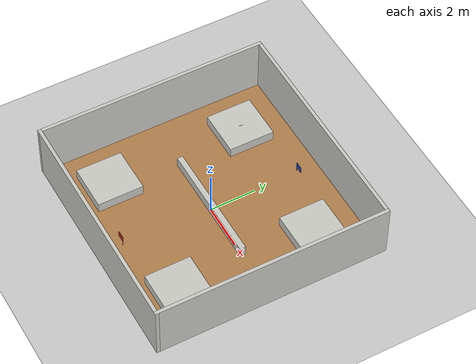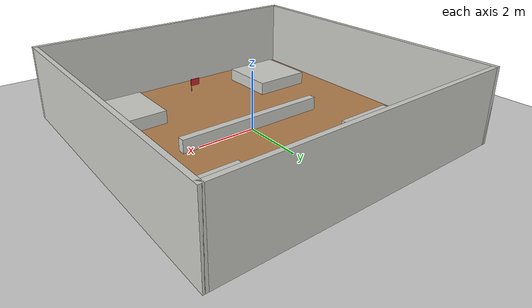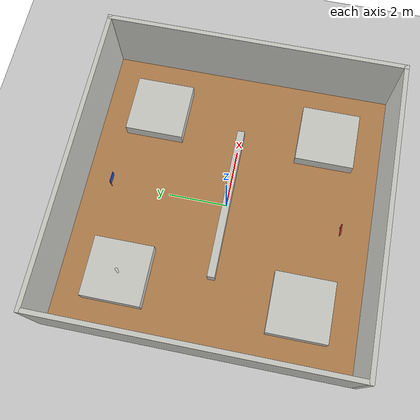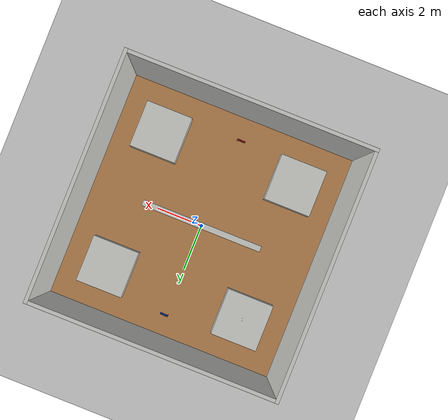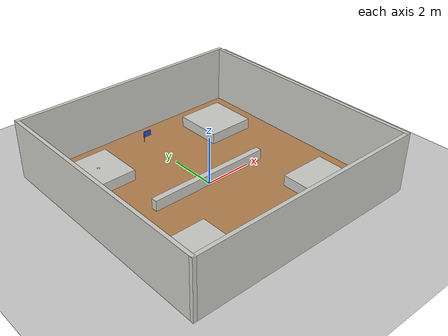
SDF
<sdf version="1.7">
 <world name="default">
  <light name="sun" type="directional">
   <pose>0 0 10 0 -0 0</pose>
   <diffuse>0.8 0.8 0.8 1</diffuse>
   <specular>0.2 0.2 0.2 1</specular>
   <attenuation>
    <range>1000</range>
    <constant>0.9</constant>
    <linear>0.01</linear>
    <quadratic>0.001</quadratic>
   </attenuation>
   <direction>-0.5 0.1 -0.9</direction>
   <spot><inner_angle>0</inner_angle><outer_angle>0</outer_angle><falloff>0</falloff></spot>
  </light>
  <model name="ground_plane">
   <static>1</static>
   <link name="link">
    <collision name="collision">
     <geometry><plane><normal>0 0 1</normal><size>100 100</size></plane></geometry>
     <surface><friction><ode><mu>100</mu><mu2>50</mu2></ode></friction></surface>
    </collision>
    <visual name="visual">
     <cast_shadows>0</cast_shadows>
     <geometry><plane><normal>0 0 1</normal><size>100 100</size></plane></geometry>
     <material>
      <script><uri>file://media/materials/scripts/gazebo.material</uri><name>Gazebo/Grey</name></script>
     </material>
    </visual>
   </link>
  </model>
  <gravity>0 0 -9.8</gravity>
  <magnetic_field>6e-06 2.3e-05 -4.2e-05</magnetic_field>
  <atmosphere type="adiabatic"/>
  <physics type="ode">
   <max_step_size>0.001</max_step_size>
   <real_time_factor>1</real_time_factor>
   <real_time_update_rate>1000</real_time_update_rate>
  </physics>
  <scene><ambient>0.4 0.4 0.4 1</ambient><background>0.7 0.7 0.7 1</background><shadows>1</shadows></scene>
  <spherical_coordinates>
   <surface_model>EARTH_WGS84</surface_model>
   <latitude_deg>0</latitude_deg>
   <longitude_deg>0</longitude_deg>
   <elevation>0</elevation>
   <heading_deg>0</heading_deg>
  </spherical_coordinates>
  <model name="walls_small">
   <link name="Wall_10">
    <collision name="Wall_10_Collision">
     <geometry><box><size>10.15 0.15 2.5</size></box></geometry>
     <pose>0 0 1.25 0 -0 0</pose>
    </collision>
    <visual name="Wall_10_Visual">
     <pose>0 0 1.25 0 -0 0</pose>
     <geometry><box><size>10.15 0.15 2.5</size></box></geometry>
     <material>
      <script><uri>file://media/materials/scripts/gazebo.material</uri><name>Gazebo/CeilingTiled</name></script>
      <ambient>0.760784 0.662745 0.627451 1</ambient>
     </material>
     <meta><layer>0</layer></meta>
    </visual>
    <pose>5 0 0 0 -0 -1.5708</pose>
   </link>
   <link name="Wall_7">
    <collision name="Wall_7_Collision">
     <geometry><box><size>10.15 0.15 2.5</size></box></geometry>
     <pose>0 0 1.25 0 -0 0</pose>
    </collision>
    <visual name="Wall_7_Visual">
     <pose>0 0 1.25 0 -0 0</pose>
     <geometry><box><size>10.15 0.15 2.5</size></box></geometry>
     <material>
      <script><uri>file://media/materials/scripts/gazebo.material</uri><name>Gazebo/CeilingTiled</name></script>
      <ambient>0.760784 0.662745 0.627451 1</ambient>
     </material>
     <meta><layer>0</layer></meta>
    </visual>
    <pose>0 -5 0 0 -0 3.14159</pose>
   </link>
   <link name="Wall_8">
    <collision name="Wall_8_Collision">
     <geometry><box><size>10.15 0.15 2.5</size></box></geometry>
     <pose>0 0 1.25 0 -0 0</pose>
    </collision>
    <visual name="Wall_8_Visual">
     <pose>0 0 1.25 0 -0 0</pose>
     <geometry><box><size>10.15 0.15 2.5</size></box></geometry>
     <material>
      <script><uri>file://media/materials/scripts/gazebo.material</uri><name>Gazebo/CeilingTiled</name></script>
      <ambient>0.760784 0.662745 0.627451 1</ambient>
     </material>
     <meta><layer>0</layer></meta>
    </visual>
    <pose>-5 0 0 0 -0 1.5708</pose>
   </link>
   <link name="Wall_9">
    <collision name="Wall_9_Collision">
     <geometry><box><size>10.15 0.15 2.5</size></box></geometry>
     <pose>0 0 1.25 0 -0 0</pose>
    </collision>
    <visual name="Wall_9_Visual">
     <pose>0 0 1.25 0 -0 0</pose>
     <geometry><box><size>10.15 0.15 2.5</size></box></geometry>
     <material>
      <script><uri>file://media/materials/scripts/gazebo.material</uri><name>Gazebo/CeilingTiled</name></script>
      <ambient>0.760784 0.662745 0.627451 1</ambient>
     </material>
     <meta><layer>0</layer></meta>
    </visual>
    <pose>0 5 0 0 -0 0</pose>
   </link>
   <static>1</static>
  </model>
  <model name="middle_wall">
   <link name="Wall_12">
    <collision name="Wall_12_Collision">
     <geometry><box><size>5.25 0.25 0.5</size></box></geometry>
     <pose>0 0 0.25 0 -0 0</pose>
    </collision>
    <visual name="Wall_12_Visual">
     <pose>0 0 0.25 0 -0 0</pose>
     <geometry><box><size>5.25 0.25 0.5</size></box></geometry>
     <material>
      <script><uri>file://media/materials/scripts/gazebo.material</uri><name>Gazebo/CeilingTiled</name></script>
      <ambient>0.760784 0.662745 0.627451 1</ambient>
     </material>
     <meta><layer>0</layer></meta>
    </visual>
    <pose>0 0 0 0 -0 3.14159</pose>
   </link>
   <static>1</static>
  </model>
  <model name="obstacles">
   <link name="Wall_16">
    <collision name="Wall_16_Collision">
     <geometry><box><size>2 2 0.5</size></box></geometry>
     <pose>0 0 0.25 0 -0 0</pose>
    </collision>
    <visual name="Wall_16_Visual">
     <pose>0 0 0.25 0 -0 0</pose>
     <geometry><box><size>2 2 0.5</size></box></geometry>
     <material>
      <script><uri>file://media/materials/scripts/gazebo.material</uri><name>Gazebo/CeilingTiled</name></script>
      <ambient>0.760784 0.662745 0.627451 1</ambient>
     </material>
     <meta><layer>0</layer></meta>
    </visual>
    <pose>-3 -3 0 0 -0 0</pose>
   </link>
   <link name="Wall_19">
    <collision name="Wall_19_Collision">
     <geometry><box><size>2 2 0.5</size></box></geometry>
     <pose>0 0 0.25 0 -0 0</pose>
    </collision>
    <visual name="Wall_19_Visual">
     <pose>0 0 0.25 0 -0 0</pose>
     <geometry><box><size>2 2 0.5</size></box></geometry>
     <material>
      <script><uri>file://media/materials/scripts/gazebo.material</uri><name>Gazebo/CeilingTiled</name></script>
      <ambient>0.760784 0.662745 0.627451 1</ambient>
     </material>
     <meta><layer>0</layer></meta>
    </visual>
    <pose>3 3 0 0 -0 0</pose>
   </link>
   <link name="Wall_21">
    <collision name="Wall_21_Collision">
     <geometry><box><size>2 2 0.5</size></box></geometry>
     <pose>0 0 0.25 0 -0 0</pose>
    </collision>
    <visual name="Wall_21_Visual">
     <pose>0 0 0.25 0 -0 0</pose>
     <geometry><box><size>2 2 0.5</size></box></geometry>
     <material>
      <script><uri>file://media/materials/scripts/gazebo.material</uri><name>Gazebo/CeilingTiled</name></script>
      <ambient>0.760784 0.662745 0.627451 1</ambient>
     </material>
     <meta><layer>0</layer></meta>
    </visual>
    <pose>3 -3 0 0 -0 0</pose>
   </link>
   <link name="Wall_23">
    <collision name="Wall_23_Collision">
     <geometry><box><size>0.15 0.15 0.5</size></box></geometry>
     <pose>0 0 0.25 0 -0 0</pose>
    </collision>
    <visual name="Wall_23_Visual">
     <pose>0 0 0.25 0 -0 0</pose>
     <geometry><box><size>0.15 0.15 0.5</size></box></geometry>
     <material>
      <script><uri>file://media/materials/scripts/gazebo.material</uri><name>Gazebo/CeilingTiled</name></script>
      <ambient>0.760784 0.662745 0.627451 1</ambient>
     </material>
     <meta><layer>0</layer></meta>
    </visual>
    <pose>-3 3 0 0 -0 0</pose>
   </link>
   <link name="Wall_28">
    <collision name="Wall_28_Collision">
     <geometry><box><size>2 2 0.5</size></box></geometry>
     <pose>0 0 0.25 0 -0 0</pose>
    </collision>
    <visual name="Wall_28_Visual">
     <pose>0 0 0.25 0 -0 0</pose>
     <geometry><box><size>2 2 0.5</size></box></geometry>
     <material>
      <script><uri>file://media/materials/scripts/gazebo.material</uri><name>Gazebo/CeilingTiled</name></script>
      <ambient>0.760784 0.662745 0.627451 1</ambient>
     </material>
     <meta><layer>0</layer></meta>
    </visual>
    <pose>-3 3 0 0 -0 0</pose>
   </link>
   <static>1</static>
  </model>
  <model name="floor">
   <link name="Wall_0">
    <collision name="Wall_0_Collision">
     <geometry><box><size>10 10 0.05</size></box></geometry>
     <pose>0 0 0.025 0 -0 0</pose>
    </collision>
    <visual name="Wall_0_Visual">
     <pose>0 0 0.025 0 -0 0</pose>
     <geometry><box><size>10 10 0.05</size></box></geometry>
     <material>
      <script><uri>file://media/materials/scripts/gazebo.material</uri><name>Gazebo/Wood</name></script>
      <ambient>1 1 1 1</ambient>
     </material>
     <meta><layer>0</layer></meta>
    </visual>
   </link>
   <static>1</static>
  </model>
  <model name="blue_flag_0">
   <link name="link_0">
    <inertial>
     <mass>1</mass>
     <inertia><ixx>0.145833</ixx><ixy>0</ixy><ixz>0</ixz><iyy>0.145833</iyy><iyz>0</iyz><izz>0.125</izz></inertia>
    </inertial>
    <pose>-0.080285 0.006819 -0.055 0 0 -0.196356</pose>
    <visual name="visual">
     <geometry><cylinder><radius>0.0125</radius><length>0.5</length></cylinder></geometry>
     <material>
      <lighting>1</lighting>
      <script><uri>file://media/materials/scripts/gazebo.material</uri><name>Gazebo/Grey</name></script>
      <shader type="pixel"><normal_map>__default__</normal_map></shader>
      <ambient>0.3 0.3 0.3 1</ambient>
      <diffuse>0.7 0.7 0.7 1</diffuse>
      <specular>0.01 0.01 0.01 1</specular>
      <emissive>0 0 0 1</emissive>
     </material>
    </visual>
    <collision name="collision">
     <geometry><cylinder><radius>0.0125</radius><length>0.5</length></cylinder></geometry>
     <surface>
      <friction>
       <ode><mu>1</mu><mu2>1</mu2><fdir1>0 0 0</fdir1><slip1>0</slip1><slip2>0</slip2></ode>
       <torsional>
        <coefficient>1</coefficient>
        <patch_radius>0</patch_radius>
        <surface_radius>0</surface_radius>
        <use_patch_radius>1</use_patch_radius>
        <ode><slip>0</slip></ode>
       </torsional>
      </friction>
      <bounce><restitution_coefficient>0</restitution_coefficient><threshold>1e+06</threshold></bounce>
      <contact>
       <collide_without_contact>0</collide_without_contact>
       <collide_without_contact_bitmask>1</collide_without_contact_bitmask>
       <collide_bitmask>1</collide_bitmask>
       <ode>
        <soft_cfm>0</soft_cfm>
        <soft_erp>0.2</soft_erp>
        <kp>1e+13</kp>
        <kd>1</kd>
        <max_vel>0.01</max_vel>
        <min_depth>0</min_depth>
       </ode>
       <bullet>
        <split_impulse>1</split_impulse>
        <split_impulse_penetration_threshold>-0.01</split_impulse_penetration_threshold>
        <soft_cfm>0</soft_cfm>
        <soft_erp>0.2</soft_erp>
        <kp>1e+13</kp>
        <kd>1</kd>
       </bullet>
      </contact>
     </surface>
    </collision>
   </link>
   <link name="link_1">
    <inertial>
     <mass>1</mass>
     <inertia>
      <ixx>0.166667</ixx>
      <ixy>0</ixy>
      <ixz>0</ixz>
      <iyy>0.166667</iyy>
      <iyz>0</iyz>
      <izz>0.166667</izz>
     </inertia>
    </inertial>
    <pose>0.080537 0.002737 0.055 0 0 -0.026356</pose>
    <visual name="visual">
     <geometry><box><size>0.35 0.025 0.25</size></box></geometry>
     <material>
      <lighting>1</lighting>
      <script><uri>file://media/materials/scripts/gazebo.material</uri><name>Gazebo/Blue</name></script>
      <shader type="pixel"><normal_map>__default__</normal_map></shader>
      <ambient>0 0 1 1</ambient>
      <diffuse>0 0 1 1</diffuse>
      <specular>0.1 0.1 0.1 1</specular>
      <emissive>0 0 0 1</emissive>
     </material>
    </visual>
    <collision name="collision">
     <geometry><box><size>0.35 0.025 0.25</size></box></geometry>
     <surface>
      <friction>
       <ode><mu>1</mu><mu2>1</mu2><fdir1>0 0 0</fdir1><slip1>0</slip1><slip2>0</slip2></ode>
       <torsional>
        <coefficient>1</coefficient>
        <patch_radius>0</patch_radius>
        <surface_radius>0</surface_radius>
        <use_patch_radius>1</use_patch_radius>
        <ode><slip>0</slip></ode>
       </torsional>
      </friction>
      <bounce><restitution_coefficient>0</restitution_coefficient><threshold>1e+06</threshold></bounce>
      <contact>
       <collide_without_contact>0</collide_without_contact>
       <collide_without_contact_bitmask>1</collide_without_contact_bitmask>
       <collide_bitmask>1</collide_bitmask>
       <ode>
        <soft_cfm>0</soft_cfm>
        <soft_erp>0.2</soft_erp>
        <kp>1e+13</kp>
        <kd>1</kd>
        <max_vel>0.01</max_vel>
        <min_depth>0</min_depth>
       </ode>
       <bullet>
        <split_impulse>1</split_impulse>
        <split_impulse_penetration_threshold>-0.01</split_impulse_penetration_threshold>
        <soft_cfm>0</soft_cfm>
        <soft_erp>0.2</soft_erp>
        <kp>1e+13</kp>
        <kd>1</kd>
       </bullet>
      </contact>
     </surface>
    </collision>
   </link>
   <joint name="link_0_JOINT_2" type="fixed">
    <parent>link_0</parent>
    <child>link_1</child>
    <pose>0 0 0 0 -0 0.1</pose>
    <physics>
     <ode><limit><cfm>0</cfm><erp>0.2</erp></limit><suspension><cfm>0</cfm><erp>0.2</erp></suspension></ode>
    </physics>
   </joint>
   <static>1</static>
   <pose>0.001833 4.00059 0.356559 0 -0 0</pose>
  </model>
  <model name="red_flag_0">
   <link name="link_0">
    <inertial>
     <mass>1</mass>
     <inertia><ixx>0.145833</ixx><ixy>0</ixy><ixz>0</ixz><iyy>0.145833</iyy><iyz>0</iyz><izz>0.125</izz></inertia>
    </inertial>
    <pose>-0.080285 0.006819 -0.055 0 0 -0.196356</pose>
    <visual name="visual">
     <geometry><cylinder><radius>0.0125</radius><length>0.5</length></cylinder></geometry>
     <material>
      <lighting>1</lighting>
      <script><uri>file://media/materials/scripts/gazebo.material</uri><name>Gazebo/Grey</name></script>
      <shader type="pixel"><normal_map>__default__</normal_map></shader>
      <ambient>0.3 0.3 0.3 1</ambient>
      <diffuse>0.7 0.7 0.7 1</diffuse>
      <specular>0.01 0.01 0.01 1</specular>
      <emissive>0 0 0 1</emissive>
     </material>
    </visual>
    <collision name="collision">
     <geometry><cylinder><radius>0.0125</radius><length>0.5</length></cylinder></geometry>
     <surface>
      <friction>
       <ode><mu>1</mu><mu2>1</mu2><fdir1>0 0 0</fdir1><slip1>0</slip1><slip2>0</slip2></ode>
       <torsional>
        <coefficient>1</coefficient>
        <patch_radius>0</patch_radius>
        <surface_radius>0</surface_radius>
        <use_patch_radius>1</use_patch_radius>
        <ode><slip>0</slip></ode>
       </torsional>
      </friction>
      <bounce><restitution_coefficient>0</restitution_coefficient><threshold>1e+06</threshold></bounce>
      <contact>
       <collide_without_contact>0</collide_without_contact>
       <collide_without_contact_bitmask>1</collide_without_contact_bitmask>
       <collide_bitmask>1</collide_bitmask>
       <ode>
        <soft_cfm>0</soft_cfm>
        <soft_erp>0.2</soft_erp>
        <kp>1e+13</kp>
        <kd>1</kd>
        <max_vel>0.01</max_vel>
        <min_depth>0</min_depth>
       </ode>
       <bullet>
        <split_impulse>1</split_impulse>
        <split_impulse_penetration_threshold>-0.01</split_impulse_penetration_threshold>
        <soft_cfm>0</soft_cfm>
        <soft_erp>0.2</soft_erp>
        <kp>1e+13</kp>
        <kd>1</kd>
       </bullet>
      </contact>
     </surface>
    </collision>
   </link>
   <link name="link_1">
    <inertial>
     <mass>1</mass>
     <inertia>
      <ixx>0.166667</ixx>
      <ixy>0</ixy>
      <ixz>0</ixz>
      <iyy>0.166667</iyy>
      <iyz>0</iyz>
      <izz>0.166667</izz>
     </inertia>
    </inertial>
    <pose>0.080533 0.002571 0.055 0 0 -0.026356</pose>
    <visual name="visual">
     <geometry><box><size>0.35 0.025 0.25</size></box></geometry>
     <material>
      <lighting>1</lighting>
      <script><uri>file://media/materials/scripts/gazebo.material</uri><name>Gazebo/Red</name></script>
      <shader type="pixel"><normal_map>__default__</normal_map></shader>
      <ambient>1 0 0 1</ambient>
      <diffuse>1 0 0 1</diffuse>
      <specular>0.1 0.1 0.1 1</specular>
      <emissive>0 0 0 1</emissive>
     </material>
    </visual>
    <collision name="collision">
     <geometry><box><size>0.35 0.025 0.25</size></box></geometry>
     <surface>
      <friction>
       <ode><mu>1</mu><mu2>1</mu2><fdir1>0 0 0</fdir1><slip1>0</slip1><slip2>0</slip2></ode>
       <torsional>
        <coefficient>1</coefficient>
        <patch_radius>0</patch_radius>
        <surface_radius>0</surface_radius>
        <use_patch_radius>1</use_patch_radius>
        <ode><slip>0</slip></ode>
       </torsional>
      </friction>
      <bounce><restitution_coefficient>0</restitution_coefficient><threshold>1e+06</threshold></bounce>
      <contact>
       <collide_without_contact>0</collide_without_contact>
       <collide_without_contact_bitmask>1</collide_without_contact_bitmask>
       <collide_bitmask>1</collide_bitmask>
       <ode>
        <soft_cfm>0</soft_cfm>
        <soft_erp>0.2</soft_erp>
        <kp>1e+13</kp>
        <kd>1</kd>
        <max_vel>0.01</max_vel>
        <min_depth>0</min_depth>
       </ode>
       <bullet>
        <split_impulse>1</split_impulse>
        <split_impulse_penetration_threshold>-0.01</split_impulse_penetration_threshold>
        <soft_cfm>0</soft_cfm>
        <soft_erp>0.2</soft_erp>
        <kp>1e+13</kp>
        <kd>1</kd>
       </bullet>
      </contact>
     </surface>
    </collision>
   </link>
   <joint name="link_0_JOINT_2" type="fixed">
    <parent>link_0</parent>
    <child>link_1</child>
    <pose>0 0 0 0 -0 0.1</pose>
    <physics>
     <ode><limit><cfm>0</cfm><erp>0.2</erp></limit><suspension><cfm>0</cfm><erp>0.2</erp></suspension></ode>
    </physics>
   </joint>
   <static>1</static>
   <pose>-0.147521 -3.89187 0.347309 0 0 -3.14128</pose>
  </model>
 </world>
</sdf>
